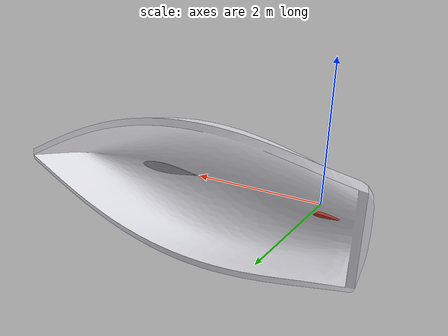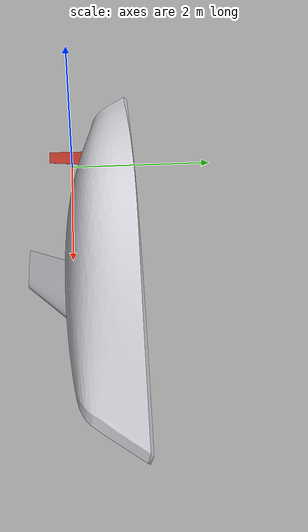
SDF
<?xml version="1.0" ?>
<sdf version="1.6">
  <world name="world">
    <model name="toy_boat">
      <pose>0 0 0 0 0 0</pose>

      <!-- ===================== HULL (base link) ====================== -->
      <link name="base_link">
        <pose>0 0 0 0 0 0</pose>
        <inertial>
          <pose>2.2206 0.3664 0 0 0 0</pose>
          <mass>1400.0</mass>
          <inertia>
            <ixx>677.0</ixx>  <ixy>0</ixy> <ixz>0</ixz>
            <iyy>4772.0</iyy> <iyz>0</iyz>
            <izz>4305.0</izz>
          </inertia>
        </inertial>
        <collision name="hull_collision">
          <pose>0 0 0 0 0 0</pose>
          <geometry><mesh><uri>../sdfs/DSYHS/OBJ/hull.obj</uri><scale>0.0026970 0.0026970 0.0026970</scale></mesh></geometry>
        </collision>
        <visual name="hull_visual">
          <pose>0 0 0 0 0 0</pose>
          <geometry><mesh><uri>../sdfs/DSYHS/OBJ/hull.obj</uri><scale>0.0026970 0.0026970 0.0026970</scale></mesh></geometry>
          <material><ambient>0.85 0.85 0.88 1</ambient><diffuse>0.85 0.85 0.88 1</diffuse></material>
        </visual>
      </link>

      <!-- ===================== KEEL (ballast) ======================== -->
      <link name="keel_link">
        <pose>0 0 0 0 0 0</pose>
        <inertial>
          <!-- 2000 kg at Y=-0.80: extreme keel for maximum righting moment.
               COM → Y≈-0.32, world Z≈-0.06 (0.46 m below waterline). -->
          <pose>1.5 -0.80 0 0 0 0</pose>
          <mass>2000.0</mass>
          <inertia>
            <ixx>62.7</ixx>  <ixy>0</ixy> <ixz>0</ixz>
            <iyy>331.1</iyy>  <iyz>0</iyz>
            <izz>384.4</izz>
          </inertia>
        </inertial>
        <collision name="keel_collision">
          <pose>0 0 0 0 0 0</pose>
          <geometry><mesh><uri>../sdfs/DSYHS/OBJ/keel.obj</uri><scale>0.0026970 0.0026970 0.0026970</scale></mesh></geometry>
        </collision>
        <visual name="keel_visual">
          <pose>0 0 0 0 0 0</pose>
          <geometry><mesh><uri>../sdfs/DSYHS/OBJ/keel.obj</uri><scale>0.0026970 0.0026970 0.0026970</scale></mesh></geometry>
          <material><ambient>0.6 0.6 0.62 1</ambient><diffuse>0.6 0.6 0.62 1</diffuse></material>
        </visual>
      </link>

      <!-- ===================== RUDDER ================================ -->
      <link name="rudder_link">
        <pose>0 0 0 0 0 0</pose>
        <inertial>
          <pose>-0.2113 0.0233 0 0 0 0</pose>
          <mass>20.0</mass>
          <inertia>
            <ixx>0.86</ixx>  <ixy>0</ixy> <ixz>0</ixz>
            <iyy>0.20</iyy>  <iyz>0</iyz>
            <izz>1.06</izz>
          </inertia>
        </inertial>
        <collision name="rudder_collision">
          <pose>0 0 0 0 0 0</pose>
          <geometry><mesh><uri>../sdfs/DSYHS/OBJ/rudder.obj</uri><scale>0.0026970 0.0026970 0.0026970</scale></mesh></geometry>
        </collision>
        <visual name="rudder_visual">
          <pose>0 0 0 0 0 0</pose>
          <geometry><mesh><uri>../sdfs/DSYHS/OBJ/rudder.obj</uri><scale>0.0026970 0.0026970 0.0026970</scale></mesh></geometry>
          <material><ambient>0.7 0.2 0.15 1</ambient><diffuse>0.7 0.2 0.15 1</diffuse></material>
        </visual>
      </link>

      <!-- Rigid welds attaching keel + rudder to the hull -->
      <joint name="joint_keel" type="fixed">
        <parent>base_link</parent><child>keel_link</child><pose>0 0 0 0 0 0</pose>
      </joint>
      <joint name="joint_rudder" type="fixed">
        <parent>base_link</parent><child>rudder_link</child><pose>0 0 0 0 0 0</pose>
      </joint>

    </model>
  </world>
</sdf>
